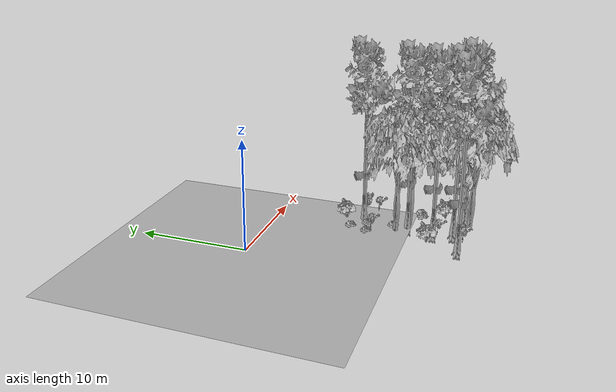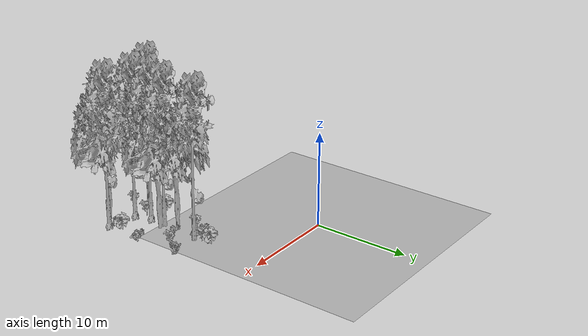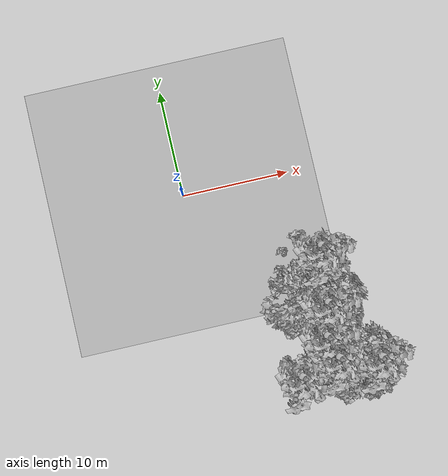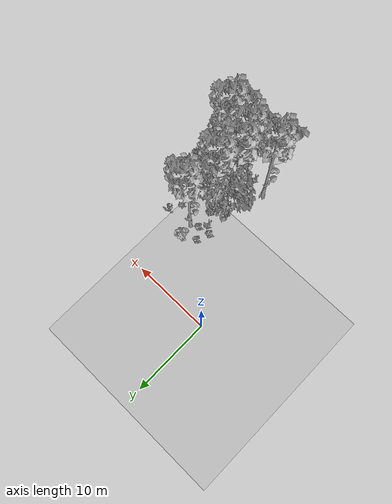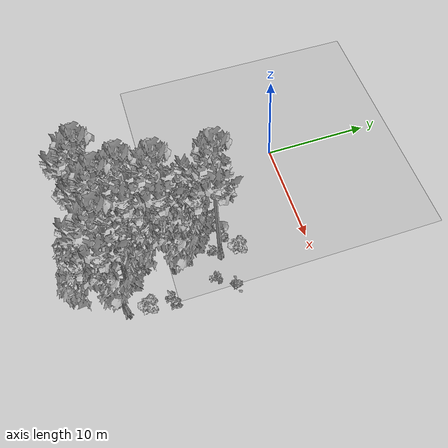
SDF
<sdf version="1.7">
 <world name="default">
  <model name="ground_plane">
   <static>1</static>
   <link name="link">
    <collision name="collision">
     <pose>-50 0 0 0 -0 0</pose>
     <geometry><plane><normal>0 0 1</normal><size>80 80</size></plane></geometry>
     <surface><contact><ode><min_depth>0.01</min_depth><max_vel>0</max_vel></ode></contact></surface>
    </collision>
    <visual name="grass">
     <cast_shadows>0</cast_shadows>
     <geometry>
      <mesh>
       <scale>0.46714285714285714 0.46714285714285714 0.1</scale>
       <uri>file://grass_plane/meshes/grass_plane.dae</uri>
      </mesh>
     </geometry>
    </visual>
   </link>
  </model>
  <model name="Tree 41">
   <static>1</static>
   <pose>8.202372892805379 -11.344655213813184 0 1.57079 -0 0</pose>
   <link name="link">
    <collision name="collision">
     <geometry><mesh><scale>3.5 5 3.5</scale><uri>model://tree_2/meshes/tree_2.obj</uri></mesh></geometry>
    </collision>
    <visual name="visual">
     <geometry><mesh><scale>3.5 5 3.5</scale><uri>model://tree_2/meshes/tree_2.obj</uri></mesh></geometry>
    </visual>
   </link>
  </model>
  <model name="Tree 117">
   <static>1</static>
   <pose>12.164115698682352 -17.037242599836368 0 1.57079 -0 0</pose>
   <link name="link">
    <collision name="collision">
     <geometry><mesh><scale>3.5 5 3.5</scale><uri>model://tree_9/meshes/tree_9.obj</uri></mesh></geometry>
    </collision>
    <visual name="visual">
     <geometry><mesh><scale>3.5 5 3.5</scale><uri>model://tree_9/meshes/tree_9.obj</uri></mesh></geometry>
    </visual>
   </link>
  </model>
  <model name="Tree 181">
   <static>1</static>
   <pose>9.198384260837258 -12.254049869306087 0 1.57079 -0 0</pose>
   <link name="link">
    <collision name="collision">
     <geometry><mesh><scale>3.5 5 3.5</scale><uri>model://tree_9/meshes/tree_9.obj</uri></mesh></geometry>
    </collision>
    <visual name="visual">
     <geometry><mesh><scale>3.5 5 3.5</scale><uri>model://tree_9/meshes/tree_9.obj</uri></mesh></geometry>
    </visual>
   </link>
  </model>
  <model name="Tree 274">
   <static>1</static>
   <pose>9.069008384830909 -16.395761725200693 0 1.57079 -0 0</pose>
   <link name="link">
    <collision name="collision">
     <geometry><mesh><scale>3.5 5 3.5</scale><uri>model://tree_9/meshes/tree_9.obj</uri></mesh></geometry>
    </collision>
    <visual name="visual">
     <geometry><mesh><scale>3.5 5 3.5</scale><uri>model://tree_9/meshes/tree_9.obj</uri></mesh></geometry>
    </visual>
   </link>
  </model>
  <model name="Tree 276">
   <static>1</static>
   <pose>11.314302157600288 -17.647459530546907 0 1.57079 -0 0</pose>
   <link name="link">
    <collision name="collision">
     <geometry><mesh><scale>3.5 5 3.5</scale><uri>model://tree_2/meshes/tree_2.obj</uri></mesh></geometry>
    </collision>
    <visual name="visual">
     <geometry><mesh><scale>3.5 5 3.5</scale><uri>model://tree_2/meshes/tree_2.obj</uri></mesh></geometry>
    </visual>
   </link>
  </model>
  <model name="Tree 287">
   <static>1</static>
   <pose>9.658643098853183 -8.006696274333372 0 1.57079 -0 0</pose>
   <link name="link">
    <collision name="collision">
     <geometry><mesh><scale>3.5 5 3.5</scale><uri>model://tree_9/meshes/tree_9.obj</uri></mesh></geometry>
    </collision>
    <visual name="visual">
     <geometry><mesh><scale>3.5 5 3.5</scale><uri>model://tree_9/meshes/tree_9.obj</uri></mesh></geometry>
    </visual>
   </link>
  </model>
  <model name="Tree 356">
   <static>1</static>
   <pose>6.074160606754724 -17.196330060893146 0 1.57079 -0 0</pose>
   <link name="link">
    <collision name="collision">
     <geometry><mesh><scale>3.5 5 3.5</scale><uri>model://tree_9/meshes/tree_9.obj</uri></mesh></geometry>
    </collision>
    <visual name="visual">
     <geometry><mesh><scale>3.5 5 3.5</scale><uri>model://tree_9/meshes/tree_9.obj</uri></mesh></geometry>
    </visual>
   </link>
  </model>
  <model name="Tree 468">
   <static>1</static>
   <pose>8.560046117419041 -14.667162068745956 0 1.57079 -0 0</pose>
   <link name="link">
    <collision name="collision">
     <geometry><mesh><scale>3.5 5 3.5</scale><uri>model://tree_9/meshes/tree_9.obj</uri></mesh></geometry>
    </collision>
    <visual name="visual">
     <geometry><mesh><scale>3.5 5 3.5</scale><uri>model://tree_9/meshes/tree_9.obj</uri></mesh></geometry>
    </visual>
   </link>
  </model>
  <model name="Tree 532">
   <static>1</static>
   <pose>9.739160817608408 -12.321247544695424 0 1.57079 -0 0</pose>
   <link name="link">
    <collision name="collision">
     <geometry><mesh><scale>3.5 5 3.5</scale><uri>model://tree_2/meshes/tree_2.obj</uri></mesh></geometry>
    </collision>
    <visual name="visual">
     <geometry><mesh><scale>3.5 5 3.5</scale><uri>model://tree_2/meshes/tree_2.obj</uri></mesh></geometry>
    </visual>
   </link>
  </model>
  <model name="Bush 16">
   <static>1</static>
   <pose>7.8315896044436855 -7.214150474570069 0 1.57079 -0 0</pose>
   <link name="link">
    <collision name="collision">
     <geometry><mesh><scale>2 2 2</scale><uri>model://bush_2/meshes/bush_2.obj</uri></mesh></geometry>
     <surface><contact><collide_without_contact>false</collide_without_contact></contact></surface>
    </collision>
    <visual name="visual">
     <geometry><mesh><scale>2 2 2</scale><uri>model://bush_2/meshes/bush_2.obj</uri></mesh></geometry>
    </visual>
   </link>
  </model>
  <model name="Bush 38">
   <static>1</static>
   <pose>8.765305665354859 -15.045083143553136 0 1.57079 -0 0</pose>
   <link name="link">
    <collision name="collision">
     <geometry><mesh><scale>2 2 2</scale><uri>model://bush_5/meshes/bush_5.obj</uri></mesh></geometry>
     <surface><contact><collide_without_contact>false</collide_without_contact></contact></surface>
    </collision>
    <visual name="visual">
     <geometry><mesh><scale>2 2 2</scale><uri>model://bush_5/meshes/bush_5.obj</uri></mesh></geometry>
    </visual>
   </link>
  </model>
  <model name="Bush 46">
   <static>1</static>
   <pose>9.159086923399279 -10.91512638155659 0 1.57079 -0 0</pose>
   <link name="link">
    <collision name="collision">
     <geometry><mesh><scale>2 2 2</scale><uri>model://bush_2/meshes/bush_2.obj</uri></mesh></geometry>
     <surface><contact><collide_without_contact>false</collide_without_contact></contact></surface>
    </collision>
    <visual name="visual">
     <geometry><mesh><scale>2 2 2</scale><uri>model://bush_2/meshes/bush_2.obj</uri></mesh></geometry>
    </visual>
   </link>
  </model>
  <model name="Bush 48">
   <static>1</static>
   <pose>9.480063170159553 -6.420128196579753 0 1.57079 -0 0</pose>
   <link name="link">
    <collision name="collision">
     <geometry><mesh><scale>2 2 2</scale><uri>model://bush_1/meshes/bush_1.obj</uri></mesh></geometry>
     <surface><contact><collide_without_contact>false</collide_without_contact></contact></surface>
    </collision>
    <visual name="visual">
     <geometry><mesh><scale>2 2 2</scale><uri>model://bush_1/meshes/bush_1.obj</uri></mesh></geometry>
    </visual>
   </link>
  </model>
  <model name="Bush 101">
   <static>1</static>
   <pose>12.93777037364007 -7.617016344386087 0 1.57079 -0 0</pose>
   <link name="link">
    <collision name="collision">
     <geometry><mesh><scale>2 2 2</scale><uri>model://bush_4/meshes/bush_4.obj</uri></mesh></geometry>
     <surface><contact><collide_without_contact>false</collide_without_contact></contact></surface>
    </collision>
    <visual name="visual">
     <geometry><mesh><scale>2 2 2</scale><uri>model://bush_4/meshes/bush_4.obj</uri></mesh></geometry>
    </visual>
   </link>
  </model>
  <model name="Bush 139">
   <static>1</static>
   <pose>6.842620915278353 -14.42965333134672 0 1.57079 -0 0</pose>
   <link name="link">
    <collision name="collision">
     <geometry><mesh><scale>2 2 2</scale><uri>model://bush_1/meshes/bush_1.obj</uri></mesh></geometry>
     <surface><contact><collide_without_contact>false</collide_without_contact></contact></surface>
    </collision>
    <visual name="visual">
     <geometry><mesh><scale>2 2 2</scale><uri>model://bush_1/meshes/bush_1.obj</uri></mesh></geometry>
    </visual>
   </link>
  </model>
  <model name="Bush 192">
   <static>1</static>
   <pose>7.969472180282793 -9.084939740324689 0 1.57079 -0 0</pose>
   <link name="link">
    <collision name="collision">
     <geometry><mesh><scale>2 2 2</scale><uri>model://bush_5/meshes/bush_5.obj</uri></mesh></geometry>
     <surface><contact><collide_without_contact>false</collide_without_contact></contact></surface>
    </collision>
    <visual name="visual">
     <geometry><mesh><scale>2 2 2</scale><uri>model://bush_5/meshes/bush_5.obj</uri></mesh></geometry>
    </visual>
   </link>
  </model>
  <model name="Bush 258">
   <static>1</static>
   <pose>12.47297684582341 -15.25507619791189 0 1.57079 -0 0</pose>
   <link name="link">
    <collision name="collision">
     <geometry><mesh><scale>2 2 2</scale><uri>model://bush_1/meshes/bush_1.obj</uri></mesh></geometry>
     <surface><contact><collide_without_contact>false</collide_without_contact></contact></surface>
    </collision>
    <visual name="visual">
     <geometry><mesh><scale>2 2 2</scale><uri>model://bush_1/meshes/bush_1.obj</uri></mesh></geometry>
    </visual>
   </link>
  </model>
  <model name="Bush 320">
   <static>1</static>
   <pose>12.031769192040947 -8.887921326746575 0 1.57079 -0 0</pose>
   <link name="link">
    <collision name="collision">
     <geometry><mesh><scale>2 2 2</scale><uri>model://bush_5/meshes/bush_5.obj</uri></mesh></geometry>
     <surface><contact><collide_without_contact>false</collide_without_contact></contact></surface>
    </collision>
    <visual name="visual">
     <geometry><mesh><scale>2 2 2</scale><uri>model://bush_5/meshes/bush_5.obj</uri></mesh></geometry>
    </visual>
   </link>
  </model>
  <model name="Bush 372">
   <static>1</static>
   <pose>8.816073721568387 -8.584271235153818 0 1.57079 -0 0</pose>
   <link name="link">
    <collision name="collision">
     <geometry><mesh><scale>2 2 2</scale><uri>model://bush_2/meshes/bush_2.obj</uri></mesh></geometry>
     <surface><contact><collide_without_contact>false</collide_without_contact></contact></surface>
    </collision>
    <visual name="visual">
     <geometry><mesh><scale>2 2 2</scale><uri>model://bush_2/meshes/bush_2.obj</uri></mesh></geometry>
    </visual>
   </link>
  </model>
  <model name="Bush 408">
   <static>1</static>
   <pose>7.969703840747911 -17.40457940333041 0 1.57079 -0 0</pose>
   <link name="link">
    <collision name="collision">
     <geometry><mesh><scale>2 2 2</scale><uri>model://bush_5/meshes/bush_5.obj</uri></mesh></geometry>
     <surface><contact><collide_without_contact>false</collide_without_contact></contact></surface>
    </collision>
    <visual name="visual">
     <geometry><mesh><scale>2 2 2</scale><uri>model://bush_5/meshes/bush_5.obj</uri></mesh></geometry>
    </visual>
   </link>
  </model>
  <model name="Bush 555">
   <static>1</static>
   <pose>7.227822550354652 -8.818348844061347 0 1.57079 -0 0</pose>
   <link name="link">
    <collision name="collision">
     <geometry><mesh><scale>2 2 2</scale><uri>model://bush_2/meshes/bush_2.obj</uri></mesh></geometry>
     <surface><contact><collide_without_contact>false</collide_without_contact></contact></surface>
    </collision>
    <visual name="visual">
     <geometry><mesh><scale>2 2 2</scale><uri>model://bush_2/meshes/bush_2.obj</uri></mesh></geometry>
    </visual>
   </link>
  </model>
  <model name="Bush 594">
   <static>1</static>
   <pose>12.658939296762625 -12.921058907436766 0 1.57079 -0 0</pose>
   <link name="link">
    <collision name="collision">
     <geometry><mesh><scale>2 2 2</scale><uri>model://bush_2/meshes/bush_2.obj</uri></mesh></geometry>
     <surface><contact><collide_without_contact>false</collide_without_contact></contact></surface>
    </collision>
    <visual name="visual">
     <geometry><mesh><scale>2 2 2</scale><uri>model://bush_2/meshes/bush_2.obj</uri></mesh></geometry>
    </visual>
   </link>
  </model>
  <model name="Bush 639">
   <static>1</static>
   <pose>11.921164507822361 -13.21446081192314 0 1.57079 -0 0</pose>
   <link name="link">
    <collision name="collision">
     <geometry><mesh><scale>2 2 2</scale><uri>model://bush_2/meshes/bush_2.obj</uri></mesh></geometry>
     <surface><contact><collide_without_contact>false</collide_without_contact></contact></surface>
    </collision>
    <visual name="visual">
     <geometry><mesh><scale>2 2 2</scale><uri>model://bush_2/meshes/bush_2.obj</uri></mesh></geometry>
    </visual>
   </link>
  </model>
 </world>
</sdf>
